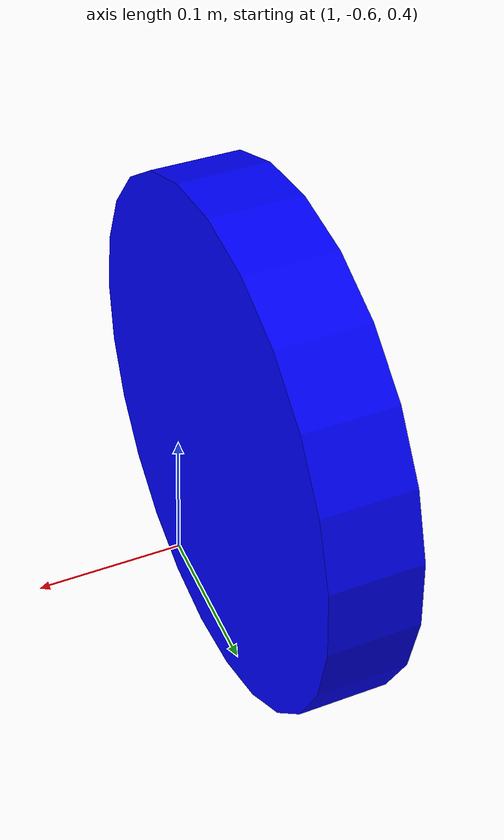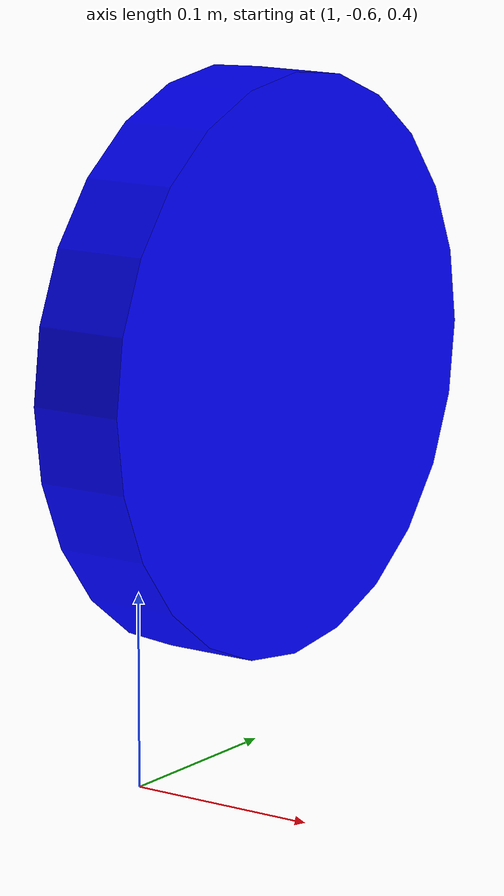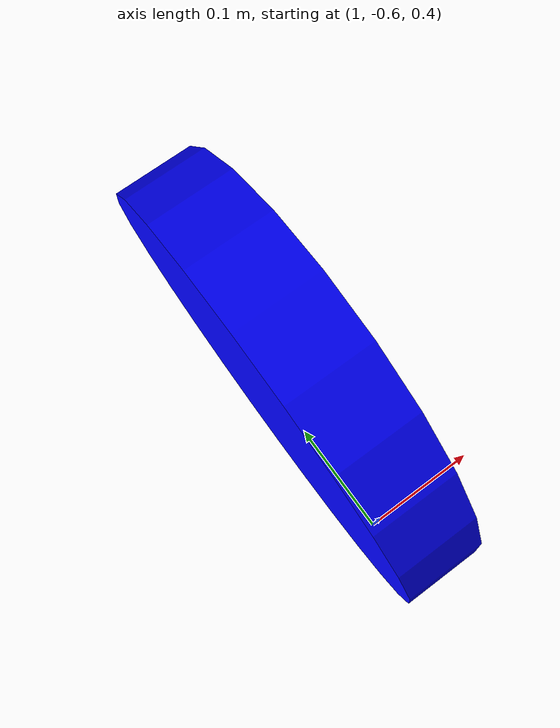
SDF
<?xml version="1.0"?>
<!-- example: https://classic.gazebosim.org/tutorials?tut=color_model&cat= -->

<sdf version="1.6">
  <model name="circular_object">
    <link name="link">
      <inertial>
        <pose>0 0 0 0 0 0</pose>
        <mass>0.001</mass>
        <inertia>
          <ixx>3.7499999999999997e-06</ixx>
          <ixy>0.0</ixy>
          <ixz>0.0</ixz>
          <iyy>1.8750008333333333e-06</iyy>
          <iyz>0.0</iyz>
          <izz>1.8750008333333333e-06</izz>
        </inertia>
      </inertial>
      <visual name="front_visual">
        <pose>1 -0.5 0.6 0 1.57 0</pose>
        <geometry>
          <cylinder>
           <radius>0.15</radius>
           <length>0.05</length>
           </cylinder>
        </geometry>
        <material>
          <ambient>0 0 1 1</ambient>
        </material>
      </visual>
      <collision name="collision">
        <pose>0 0 0 0 0 0</pose>
        <geometry>
          <cylinder>
           <radius>0.15</radius>
           <length>0.05</length>
          </cylinder>
        </geometry>
      </collision>
    </link>
  </model>
</sdf>
